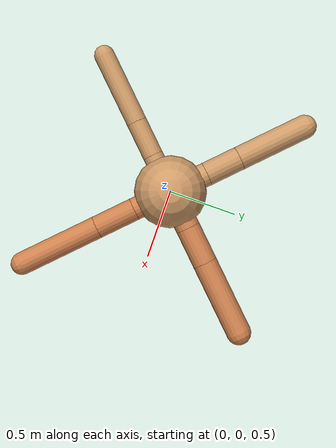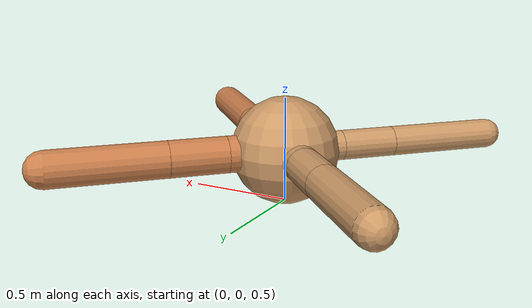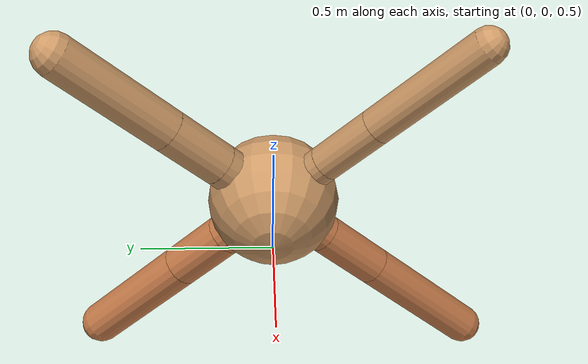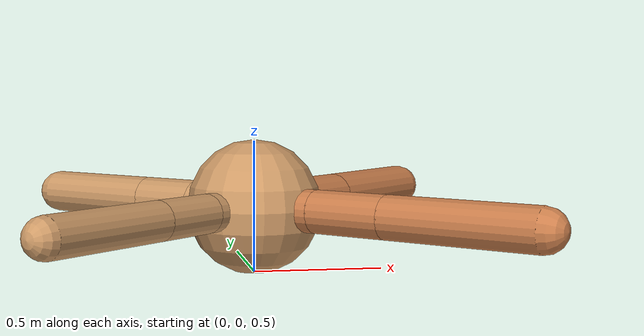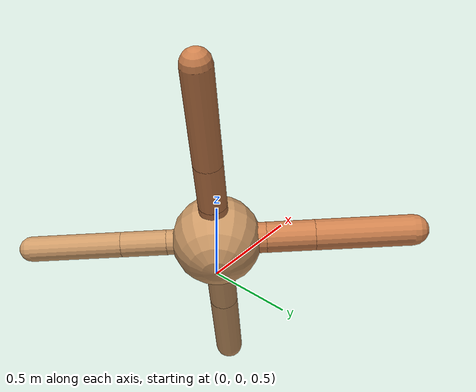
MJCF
<?xml version="1.0" ?>
<mujoco model="ant">

	<compiler angle="degree" coordinate="local" inertiafromgeom="true"/>

	<option integrator="RK4" timestep="0.01"/>

	<custom>

		<numeric data="0.0 0.0 0.55 1.0 0.0 0.0 0.0 0.0 1.0 0.0 -1.0 0.0 -1.0 0.0 1.0" name="init_qpos"/>

	</custom>

	<default>

		<joint armature="1" damping="1" limited="true"/>

		<geom conaffinity="0" condim="3" density="5.0" friction="1.5 0.1 0.1" margin="0.01" rgba="0.8 0.6 0.4 1"/>

	</default>

	<worldbody>

		<body name="torso" pos="0 0 0.75">

			<geom name="torso_geom" pos="0 0 0" size="0.2564496540233176" type="sphere"/>

			<!--joint armature="0" damping="0" limited="false" margin="0.01" name="root" pos="0 0 0" type="free"/-->

			<body name="front_left_leg" pos="0 0 0">

				<geom fromto="0 0 0 0.2 0.2 0" name="aux_1_geom" size="0.0875113494098425" type="capsule" rgba=".8 .5 .3 1"/>

				<body name="aux_1" pos="0.2 0.2 0">

					<joint axis="0 0 1" name="hip_1" pos="0.0 0.0 0.0" range="-40 40" type="hinge"/>

					<geom fromto="0 0 0 0.19326811099924937 0.19326811099924937 0" name="left_leg_geom" size="0.0875113494098425" type="capsule" rgba=".8 .5 .3 1"/>

					<body pos="0.19326811099924937 0.19326811099924937 0" name="front_left_foot">

						<joint axis="-1 1 0" name="ankle_1" pos="0.0 0.0 0.0" range="30 100" type="hinge"/>

						<geom fromto="0 0 0 0.38653622199849874 0.38653622199849874 0" name="left_ankle_geom" size="0.0875113494098425" type="capsule" rgba=".8 .5 .3 1"/>

					</body>

				</body>

			</body>

			<body name="front_right_leg" pos="0 0 0">

				<geom fromto="0 0 0 -0.2 0.2 0" name="aux_2_geom" size="0.08510669911019847" type="capsule"/>

				<body name="aux_2" pos="-0.2 0.2 0">

					<joint axis="0 0 1" name="hip_2" pos="0.0 0.0 0.0" range="-40 40" type="hinge"/>

					<geom fromto="0 0 0 -0.1805887610841349 0.1805887610841349 0" name="right_leg_geom" size="0.08510669911019847" type="capsule"/>

					<body pos="-0.1805887610841349 0.1805887610841349 0" name="front_right_foot">

						<joint axis="1 1 0" name="ankle_2" pos="0.0 0.0 0.0" range="-100 -30" type="hinge"/>

						<geom fromto="0 0 0 -0.3611775221682698 0.3611775221682698 0" name="right_ankle_geom" size="0.08510669911019847" type="capsule"/>

					</body>

				</body>

			</body>

			<body name="left_back_leg" pos="0 0 0">

				<geom fromto="0 0 0 -0.2 -0.2 0" name="aux_3_geom" size="0.07232141914843428" type="capsule"/>

				<body name="aux_3" pos="-0.2 -0.2 0">

					<joint axis="0 0 1" name="hip_3" pos="0.0 0.0 0.0" range="-40 40" type="hinge"/>

					<geom fromto="0 0 0 -0.1849370802117741 -0.1849370802117741 0" name="back_leg_geom" size="0.07232141914843428" type="capsule"/>

					<body pos="-0.1849370802117741 -0.1849370802117741 0" name="left_back_foot">

						<joint axis="-1 1 0" name="ankle_3" pos="0.0 0.0 0.0" range="-100 -30" type="hinge"/>

						<geom fromto="0 0 0 -0.3698741604235482 -0.3698741604235482 0" name="third_ankle_geom" size="0.07232141914843428" type="capsule"/>

					</body>

				</body>

			</body>

			<body name="right_back_leg" pos="0 0 0">

				<geom fromto="0 0 0 0.2 -0.2 0" name="aux_4_geom" size="0.0807744302882193" type="capsule" rgba=".8 .5 .3 1"/>

				<body name="aux_4" pos="0.2 -0.2 0">

					<joint axis="0 0 1" name="hip_4" pos="0.0 0.0 0.0" range="-40 40" type="hinge"/>

					<geom fromto="0 0 0 0.20647040912791248 -0.20647040912791248 0" name="rightback_leg_geom" size="0.0807744302882193" type="capsule" rgba=".8 .5 .3 1"/>

					<body pos="0.20647040912791248 -0.20647040912791248 0" name="right_back_foot">

						<joint axis="1 1 0" name="ankle_4" pos="0.0 0.0 0.0" range="30 100" type="hinge"/>

						<geom fromto="0 0 0 0.41294081825582496 -0.41294081825582496 0" name="fourth_ankle_geom" size="0.0807744302882193" type="capsule" rgba=".8 .5 .3 1"/>

					</body>

				</body>

			</body>

		</body>

	</worldbody>

	<actuator>

		<motor ctrllimited="true" ctrlrange="-1.0 1.0" joint="hip_4" gear="150"/>

		<motor ctrllimited="true" ctrlrange="-1.0 1.0" joint="ankle_4" gear="150"/>

		<motor ctrllimited="true" ctrlrange="-1.0 1.0" joint="hip_1" gear="150"/>

		<motor ctrllimited="true" ctrlrange="-1.0 1.0" joint="ankle_1" gear="150"/>

		<motor ctrllimited="true" ctrlrange="-1.0 1.0" joint="hip_2" gear="150"/>

		<motor ctrllimited="true" ctrlrange="-1.0 1.0" joint="ankle_2" gear="150"/>

		<motor ctrllimited="true" ctrlrange="-1.0 1.0" joint="hip_3" gear="150"/>

		<motor ctrllimited="true" ctrlrange="-1.0 1.0" joint="ankle_3" gear="150"/>

	</actuator>

</mujoco>
